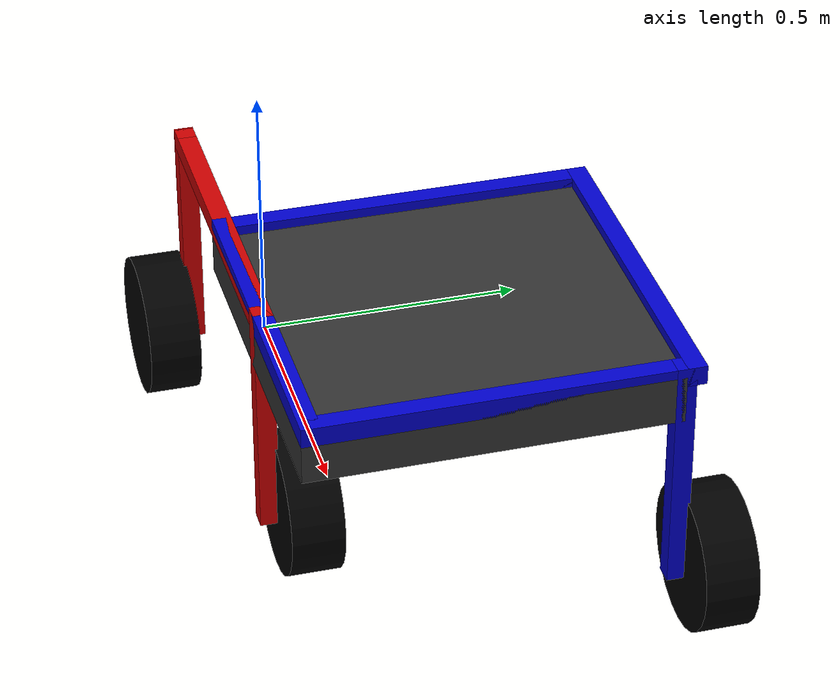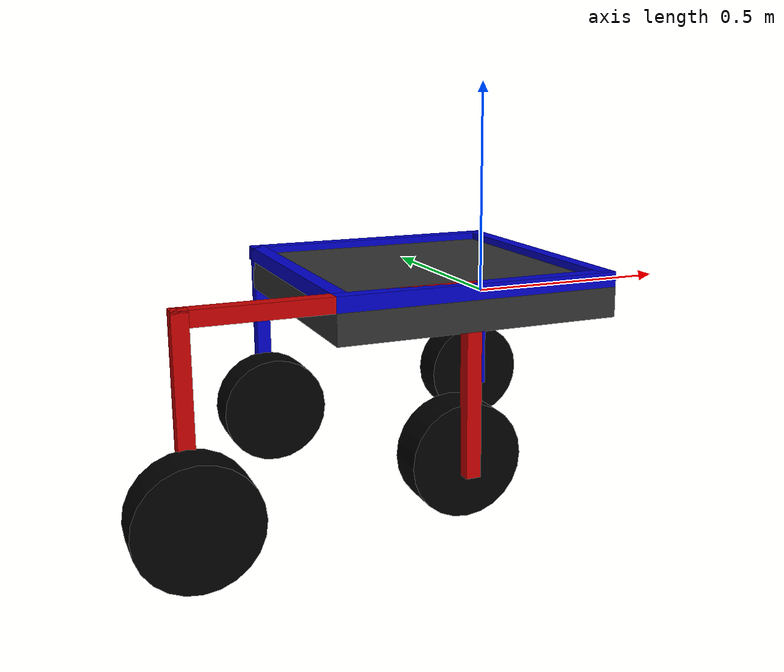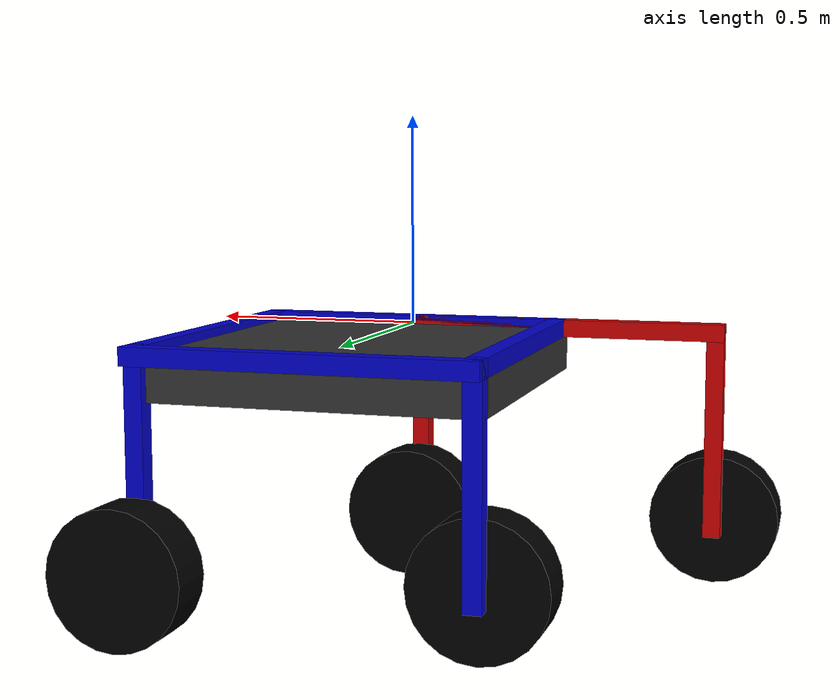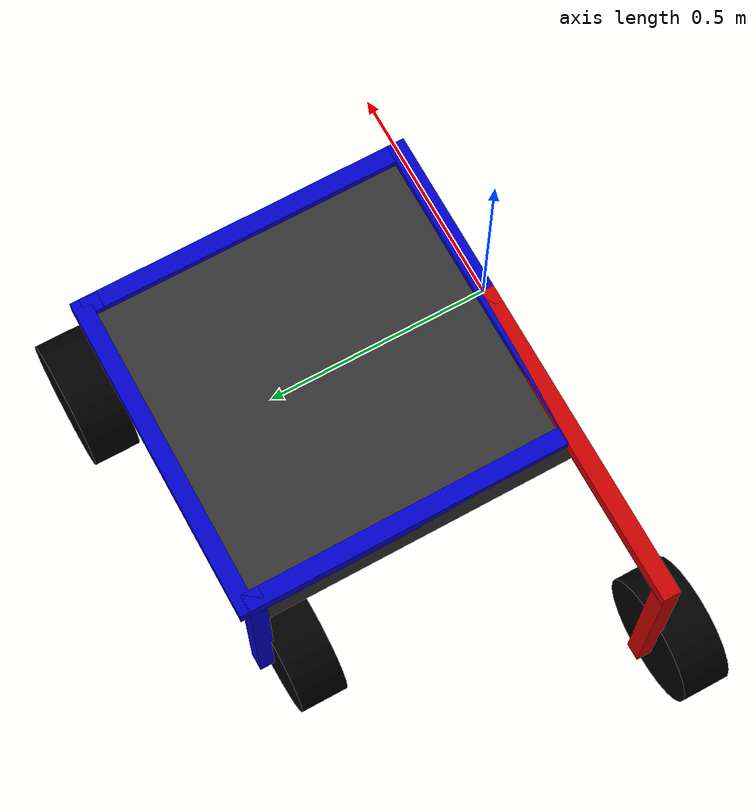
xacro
<?xml version="1.0"?>
<robot name="open_rover">
  <!-- Dummy Root Link (No Inertia for KDL Compatibility) -->
  <link name="dummy_root">
    <visual>
      <origin xyz="0 0 0" rpy="0 0 0"/>
      <geometry>
        <sphere radius="0.01"/> <!-- Minimal visual for debugging -->
      </geometry>
      <material name="transparent">
        <color rgba="0 0 0 0"/>
      </material>
    </visual>
    <collision>
      <origin xyz="0 0 0" rpy="0 0 0"/>
      <geometry>
        <sphere radius="0.01"/>
      </geometry>
    </collision>
  </link>

  <!-- Materials -->
  <material name="black">
    <color rgba="0.0 0.0 0.0 1.0"/>
  </material>
  <material name="blue">
    <color rgba="0.0 0.0 0.8 1.0"/>
  </material>
  <material name="green">
    <color rgba="0.0 0.8 0.0 1.0"/>
  </material>
  <material name="grey">
    <color rgba="0.2 0.2 0.2 1.0"/>
  </material>
  <material name="orange">
    <color rgba="1.0 0.423529411765 0.0392156862745 1.0"/>
  </material>
  <material name="brown">
    <color rgba="0.870588235294 0.811764705882 0.764705882353 1.0"/>
  </material>
  <material name="red">
    <color rgba="0.8 0.0 0.0 1.0"/>
  </material>
  <material name="white">
    <color rgba="1.0 1.0 1.0 1.0"/>
  </material>

  <!-- Macros -->
  <macro name="box_inertia" params="m x y z">
    <inertia ixx="${m*(y*y+z*z)/12}" ixy="0" ixz="0" iyy="${m*(x*x+z*z)/12}" iyz="0" izz="${m*(x*x+y*y)/12}" />
  </macro>

  <macro name="cylinder_inertia" params="m r h">
    <inertia ixx="${m*(3*r*r+h*h)/12}" ixy="0" ixz="0" iyy="${m*(3*r*r+h*h)/12}" iyz="0" izz="${m*r*r/2}" />
  </macro>

  <macro name="sphere_inertia" params="m r">
    <inertia ixx="${2*m*r*r/5}" ixy="0" ixz="0" iyy="${2*m*r*r/5}" iyz="0" izz="${2*m*r*r/5}" />
  </macro>

  <!-- Main Frame -->
  <link name="main_frame_base">
    <visual>
      <geometry>
        <box size="0.76 0.04 0.04" />
      </geometry>
      <material name="blue"/>
    </visual>
    <collision>
      <geometry>
        <box size="0.76 0.04 0.04" />
      </geometry>
    </collision>
    <inertial>
      <mass value="1.8"/>
      <inertia ixx="0.002" ixy="0.0" ixz="0.0" iyy="0.087" iyz="0.0" izz="0.087" />
    </inertial>
  </link>
  <link name="main_frame_end1">
    <visual>
      <geometry>
        <box size="0.04 0.75 0.04" />
      </geometry>
      <material name="blue"/>
    </visual>
    <collision>
      <geometry>
        <box size="0.04 0.75 0.04" />
      </geometry>
    </collision>
    <inertial>
      <mass value="1.8"/>
      <inertia ixx="0.085" ixy="0.0" ixz="0.0" iyy="0.002" iyz="0.0" izz="0.085" />
    </inertial>
  </link>
  <link name="main_frame_end2">
    <visual>
      <geometry>
        <box size="0.04 0.75 0.04" />
      </geometry>
      <material name="blue"/>
    </visual>
    <collision>
      <geometry>
        <box size="0.04 0.75 0.04" />
      </geometry>
    </collision>
    <inertial>
      <mass value="1.8"/>
      <inertia ixx="0.085" ixy="0.0" ixz="0.0" iyy="0.002" iyz="0.0" izz="0.085" />
    </inertial>
  </link>
  <link name="main_frame_side1">
    <visual>
      <geometry>
        <box size="0.76 0.04 0.04" />
      </geometry>
      <material name="blue"/>
    </visual>
    <collision>
      <geometry>
        <box size="0.76 0.04 0.04" />
      </geometry>
    </collision>
    <inertial>
      <mass value="1.8"/>
      <inertia ixx="0.002" ixy="0.0" ixz="0.0" iyy="0.087" iyz="0.0" izz="0.087" />
    </inertial>
  </link>
    <link name="main_frame_leg1">
    <visual>
      <geometry>
        <box size="0.04 0.04 0.5" />
      </geometry>
      <material name="blue"/>
    </visual>
    <collision>
      <geometry>
        <box size="0.04 0.04 0.5" />
      </geometry>
    </collision>
    <inertial>
      <mass value="1.2"/>
      <inertia ixx="0.025" ixy="0.0" ixz="0.0" iyy="0.025" iyz="0.0" izz="0.002" />
    </inertial>
  </link>
    <link name="main_frame_leg2">
    <visual>
      <geometry>
        <box size="0.04 0.04 0.5" />
      </geometry>
      <material name="blue"/>
    </visual>
    <collision>
      <geometry>
        <box size="0.04 0.04 0.5" />
      </geometry>
    </collision>
    <inertial>
      <mass value="1.2"/>
      <inertia ixx="0.025" ixy="0.0" ixz="0.0" iyy="0.025" iyz="0.0" izz="0.002" />
    </inertial>
  </link>
  <link name="sheet_metal_box">
    <visual>
      <geometry>
        <box size="0.76 0.75 0.1" />
      </geometry>
      <material name="grey"/>
    </visual>
    <collision>
      <geometry>
        <box size="0.76 0.75 0.1" />
      </geometry>
    </collision>
    <inertial>
      <mass value="11.3"/>
      <inertia ixx="0.54" ixy="0.0" ixz="0.0" iyy="0.55" iyz="0.0" izz="1.08" />
    </inertial>
  </link>

  <joint name="main_frame_end1_joint" type="fixed">
    <parent link="main_frame_base"/>
    <child link="main_frame_end1"/>
    <origin xyz="0.36 0.375 0" rpy="0 0 0"/>
  </joint>
  <joint name="main_frame_end2_joint" type="fixed">
    <parent link="main_frame_base"/>
    <child link="main_frame_end2"/>
    <origin xyz="-0.36 0.375 0" rpy="0 0 0"/>
  </joint>
  <joint name="main_frame_side1_joint" type="fixed">
    <parent link="main_frame_base"/>
    <child link="main_frame_side1"/>
    <origin xyz="0 0.75 0" rpy="0 0 0"/>
  </joint>
  <joint name="main_frame_leg1_joint" type="fixed">
    <parent link="main_frame_base"/>
    <child link="main_frame_leg1"/>
    <origin xyz="0.36 0.73 -0.23" rpy="0 0 0"/>
  </joint>
  <joint name="main_frame_leg2_joint" type="fixed">
    <parent link="main_frame_base"/>
    <child link="main_frame_leg2"/>
    <origin xyz="-0.36 0.73 -0.23" rpy="0 0 0"/>
  </joint>
  <joint name="sheet_metal_box_joint" type="fixed">
    <parent link="main_frame_base"/>
    <child link="sheet_metal_box"/>
    <origin xyz="0 0.355 -0.05" rpy="0 0 0"/>
  </joint>

  <!-- Pivot Frame -->
  <link name="pivot_frame_base">
    <visual>
      <geometry>
        <box size="0.75 0.04 0.04" />
      </geometry>
      <material name="red"/>
    </visual>
    <collision>
      <geometry>
        <box size="0.75 0.04 0.04" />
      </geometry>
    </collision>
    <inertial>
      <mass value="1.8"/>
      <inertia ixx="0.002" ixy="0.0" ixz="0.0" iyy="0.085" iyz="0.0" izz="0.085" />
    </inertial>
  </link>
  <link name="pivot_frame_leg1">
    <visual>
      <geometry>
        <box size="0.04 0.04 0.5" />
      </geometry>
      <material name="red"/>
    </visual>
    <collision>
      <geometry>
        <box size="0.04 0.04 0.5" />
      </geometry>
    </collision>
    <inertial>
      <mass value="1.2"/>
      <inertia ixx="0.025" ixy="0.0" ixz="0.0" iyy="0.025" iyz="0.0" izz="0.002" />
    </inertial>
  </link>
  <link name="pivot_frame_leg2">
    <visual>
      <geometry>
        <box size="0.04 0.04 0.5" />
      </geometry>
      <material name="red"/>
    </visual>
    <collision>
      <geometry>
        <box size="0.04 0.04 0.5" />
      </geometry>
    </collision>
    <inertial>
      <mass value="1.2"/>
      <inertia ixx="0.025" ixy="0.0" ixz="0.0" iyy="0.025" iyz="0.0" izz="0.002" />
    </inertial>
  </link>

  <joint name="pivot_frame_leg1_joint" type="fixed">
    <parent link="pivot_frame_base"/>
    <child link="pivot_frame_leg1"/>
    <origin xyz="0.355 0 -0.23" rpy="0 0 0"/>
  </joint>
  <joint name="pivot_frame_leg2_joint" type="fixed">
    <parent link="pivot_frame_base"/>
    <child link="pivot_frame_leg2"/>
    <origin xyz="-0.355 0 -0.23" rpy="0 0 0"/>
  </joint>

  <!-- Wheels -->
  <macro name="wheel" params="prefix parent x y z">
    <link name="${prefix}_wheel">
      <visual>
        <origin xyz="0 0 0" rpy="1.5708 0 0"/>
        <geometry>
          <cylinder radius="0.15" length="0.11"/>
        </geometry>
        <material name="black"/>
      </visual>
      <collision>
        <origin xyz="0 0 0" rpy="1.5708 0 0"/>
        <geometry>
          <cylinder radius="0.15" length="0.11"/>
        </geometry>
      </collision>
      <inertial>
        <mass value="2"/>
        <inertia ixx="0.015" ixy="0.0" ixz="0.0" iyy="0.015" iyz="0.0" izz="0.03" />
      </inertial>
    </link>
    <link name="${prefix}_spindle">
        <visual>
        <origin xyz="0 0 0" rpy="1.5708 0 0"/>
        <geometry>
          <cylinder radius="0.008" length="0.055"/>
        </geometry>
        <material name="grey"/>
      </visual>
    </link>

    <joint name="${prefix}_wheel_joint" type="continuous">
      <parent link="${parent}"/>
      <child link="${prefix}_wheel"/>
      <origin xyz="${x} ${y} ${z}" rpy="0 0 0"/>
      <axis xyz="0 1 0"/>
    </joint>
    <joint name="${prefix}_spindle_joint" type="fixed">
      <parent link="${parent}"/>
      <child link="${prefix}_spindle"/>
      <origin xyz="${x} ${y} ${z}" rpy="0 0 0"/>
    </joint>
  </macro>

  <wheel prefix="back_left" parent="main_frame_leg1" x="0" y="0.07" z="-0.215"/>
  <wheel prefix="back_right" parent="main_frame_leg2" x="0" y="-0.07" z="-0.215"/>
  <wheel prefix="front_left" parent="pivot_frame_leg1" x="0" y="0.07" z="-0.215"/>
  <wheel prefix="front_right" parent="pivot_frame_leg2" x="0" y="-0.07" z="-0.215"/>

  <!-- Joints -->
  <!-- Dummy Root to Main Frame -->
  <joint name="dummy_to_main_frame" type="fixed">
    <parent link="dummy_root"/>
    <child link="main_frame_base"/>
    <origin xyz="0 0 0" rpy="0 0 0"/>
  </joint>

  <!-- Pivot Joint -->
  <joint name="pivot_joint" type="revolute">
    <parent link="main_frame_base"/>
    <child link="pivot_frame_base"/>
    <origin xyz="-0.38 0 0" rpy="0 0 0"/>
    <axis xyz="0 1 0"/>
    <limit lower="-0.785" upper="0.785" effort="100" velocity="1.0"/>
  </joint>

</robot>
